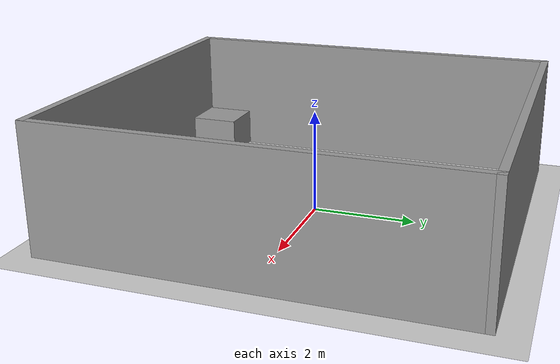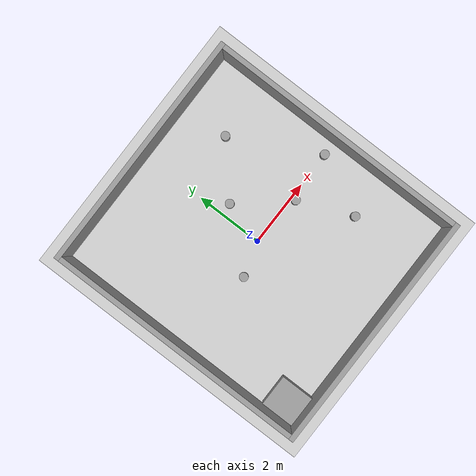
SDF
<sdf version="1.7">
 <world name="default">
  <light name="sun" type="directional">
   <pose>0 0 10 0 -0 0</pose>
   <diffuse>0.8 0.8 0.8 1</diffuse>
   <specular>0.2 0.2 0.2 1</specular>
   <attenuation>
    <range>1000</range>
    <constant>0.9</constant>
    <linear>0.01</linear>
    <quadratic>0.001</quadratic>
   </attenuation>
   <direction>-0.5 0.1 -0.9</direction>
   <spot><inner_angle>0</inner_angle><outer_angle>0</outer_angle><falloff>0</falloff></spot>
  </light>
  <model name="ground_plane">
   <static>1</static>
   <link name="link">
    <collision name="collision">
     <geometry><plane><normal>0 0 1</normal><size>100 100</size></plane></geometry>
     <surface>
      <contact><collide_bitmask>65535</collide_bitmask></contact>
      <friction><ode><mu>100</mu><mu2>50</mu2></ode></friction>
     </surface>
    </collision>
    <visual name="visual">
     <cast_shadows>0</cast_shadows>
     <geometry><plane><normal>0 0 1</normal><size>100 100</size></plane></geometry>
     <material>
      <script><uri>file://media/materials/scripts/gazebo.material</uri><name>Gazebo/Grey</name></script>
     </material>
    </visual>
   </link>
  </model>
  <gravity>0 0 -9.8</gravity>
  <magnetic_field>6e-06 2.3e-05 -4.2e-05</magnetic_field>
  <atmosphere type="adiabatic"/>
  <physics type="ode">
   <max_step_size>0.001</max_step_size>
   <real_time_factor>1</real_time_factor>
   <real_time_update_rate>1000</real_time_update_rate>
  </physics>
  <scene><ambient>0.4 0.4 0.4 1</ambient><background>0.7 0.7 0.7 1</background><shadows>1</shadows></scene>
  <spherical_coordinates>
   <surface_model>EARTH_WGS84</surface_model>
   <latitude_deg>0</latitude_deg>
   <longitude_deg>0</longitude_deg>
   <elevation>0</elevation>
   <heading_deg>0</heading_deg>
  </spherical_coordinates>
  <model name="boiler_walls">
   <pose>-0.017625 0.005277 0 0 -0 0</pose>
   <link name="Wall_0">
    <collision name="Wall_0_Collision">
     <geometry><box><size>7.25 0.15 2.5</size></box></geometry>
     <pose>0 0 1.25 0 -0 0</pose>
    </collision>
    <visual name="Wall_0_Visual">
     <pose>0 0 1.25 0 -0 0</pose>
     <geometry><box><size>7.25 0.15 2.5</size></box></geometry>
     <material>
      <script><uri>file://media/materials/scripts/gazebo.material</uri><name>Gazebo/Grey</name></script>
      <ambient>1 1 1 1</ambient>
     </material>
     <meta><layer>0</layer></meta>
    </visual>
    <pose>-0 -3.925 0 0 -0 3.14159</pose>
   </link>
   <link name="Wall_16">
    <collision name="Wall_16_Collision">
     <geometry><box><size>7.25 0.15 2.5</size></box></geometry>
     <pose>0 0 1.25 0 -0 0</pose>
    </collision>
    <visual name="Wall_16_Visual">
     <pose>0 0 1.25 0 -0 0</pose>
     <geometry><box><size>7.25 0.15 2.5</size></box></geometry>
     <material>
      <script><uri>file://media/materials/scripts/gazebo.material</uri><name>Gazebo/Grey</name></script>
      <ambient>1 1 1 1</ambient>
     </material>
     <meta><layer>0</layer></meta>
    </visual>
    <pose>-0 3.925 0 0 -0 0</pose>
   </link>
   <link name="Wall_6">
    <collision name="Wall_6_Collision">
     <geometry><box><size>8 0.15 2.5</size></box></geometry>
     <pose>0 0 1.25 0 -0 0</pose>
    </collision>
    <visual name="Wall_6_Visual">
     <pose>0 0 1.25 0 -0 0</pose>
     <geometry><box><size>8 0.15 2.5</size></box></geometry>
     <material>
      <script><uri>file://media/materials/scripts/gazebo.material</uri><name>Gazebo/Grey</name></script>
      <ambient>1 1 1 1</ambient>
     </material>
     <meta><layer>0</layer></meta>
    </visual>
    <pose>-3.55 -0 0 0 -0 1.5708</pose>
   </link>
   <link name="Wall_8">
    <collision name="Wall_8_Collision">
     <geometry><box><size>8 0.15 2.5</size></box></geometry>
     <pose>0 0 1.25 0 -0 0</pose>
    </collision>
    <visual name="Wall_8_Visual">
     <pose>0 0 1.25 0 -0 0</pose>
     <geometry><box><size>8 0.15 2.5</size></box></geometry>
     <material>
      <script><uri>file://media/materials/scripts/gazebo.material</uri><name>Gazebo/Grey</name></script>
      <ambient>1 1 1 1</ambient>
     </material>
     <meta><layer>0</layer></meta>
    </visual>
    <pose>3.55 -0 0 0 -0 1.5708</pose>
   </link>
   <static>1</static>
  </model>
  <model name="unit_box">
   <pose>-2.98179 -3.3367 0.41453 0 -0 0.000213</pose>
   <link name="link">
    <inertial>
     <mass>1</mass>
     <inertia>
      <ixx>0.166667</ixx>
      <ixy>0</ixy>
      <ixz>0</ixz>
      <iyy>0.166667</iyy>
      <iyz>0</iyz>
      <izz>0.166667</izz>
     </inertia>
    </inertial>
    <collision name="collision"><geometry><box><size>0.940274 1 0.769061</size></box></geometry></collision>
    <visual name="visual">
     <geometry><box><size>0.940274 1 0.769061</size></box></geometry>
     <material>
      <script><name>Gazebo/Grey</name><uri>file://media/materials/scripts/gazebo.material</uri></script>
     </material>
    </visual>
   </link>
  </model>
  <model name="unit_cylinder">
   <pose>1.76466 2.49189 0.297867 1e-06 -2.3e-05 -0.051589</pose>
   <link name="link">
    <inertial>
     <mass>1</mass>
     <inertia><ixx>0.145833</ixx><ixy>0</ixy><ixz>0</ixz><iyy>0.145833</iyy><iyz>0</iyz><izz>0.125</izz></inertia>
    </inertial>
    <collision name="collision">
     <geometry><cylinder><radius>0.130589</radius><length>0.535737</length></cylinder></geometry>
    </collision>
    <visual name="visual">
     <geometry><cylinder><radius>0.130589</radius><length>0.535737</length></cylinder></geometry>
     <material>
      <script><name>Gazebo/Grey</name><uri>file://media/materials/scripts/gazebo.material</uri></script>
     </material>
    </visual>
   </link>
  </model>
  <model name="unit_cylinder_clone">
   <pose>0.352768 1.25182 0.297868 1e-06 2e-05 -0.051529</pose>
   <link name="link">
    <inertial>
     <mass>1</mass>
     <inertia><ixx>0.145833</ixx><ixy>0</ixy><ixz>0</ixz><iyy>0.145833</iyy><iyz>0</iyz><izz>0.125</izz></inertia>
    </inertial>
    <collision name="collision">
     <geometry><cylinder><radius>0.130589</radius><length>0.535738</length></cylinder></geometry>
    </collision>
    <visual name="visual">
     <geometry><cylinder><radius>0.130589</radius><length>0.535738</length></cylinder></geometry>
     <material>
      <script><name>Gazebo/Grey</name><uri>file://media/materials/scripts/gazebo.material</uri></script>
     </material>
    </visual>
   </link>
  </model>
  <model name="unit_cylinder_clone_0">
   <pose>2.20308 -1.72296 0.297869 0 3.5e-05 -0.051042</pose>
   <link name="link">
    <inertial>
     <mass>1</mass>
     <inertia><ixx>0.145833</ixx><ixy>0</ixy><ixz>0</ixz><iyy>0.145833</iyy><iyz>0</iyz><izz>0.125</izz></inertia>
    </inertial>
    <collision name="collision">
     <geometry><cylinder><radius>0.130589</radius><length>0.535738</length></cylinder></geometry>
    </collision>
    <visual name="visual">
     <geometry><cylinder><radius>0.130589</radius><length>0.535738</length></cylinder></geometry>
     <material>
      <script><name>Gazebo/Grey</name><uri>file://media/materials/scripts/gazebo.material</uri></script>
     </material>
    </visual>
   </link>
  </model>
  <model name="unit_cylinder_clone_1">
   <pose>1.54998 -0.141958 0.297867 0 -2e-06 -0.051603</pose>
   <link name="link">
    <inertial>
     <mass>1</mass>
     <inertia><ixx>0.145833</ixx><ixy>0</ixy><ixz>0</ixz><iyy>0.145833</iyy><iyz>0</iyz><izz>0.125</izz></inertia>
    </inertial>
    <collision name="collision">
     <geometry><cylinder><radius>0.130589</radius><length>0.535738</length></cylinder></geometry>
    </collision>
    <visual name="visual">
     <geometry><cylinder><radius>0.130589</radius><length>0.535738</length></cylinder></geometry>
     <material>
      <script><name>Gazebo/Grey</name><uri>file://media/materials/scripts/gazebo.material</uri></script>
     </material>
    </visual>
   </link>
  </model>
  <model name="unit_cylinder_clone_2">
   <pose>-1.01598 -0.299566 0.297863 2e-06 -0 -0.0516</pose>
   <link name="link">
    <inertial>
     <mass>1</mass>
     <inertia><ixx>0.145833</ixx><ixy>0</ixy><ixz>0</ixz><iyy>0.145833</iyy><iyz>0</iyz><izz>0.125</izz></inertia>
    </inertial>
    <collision name="collision">
     <geometry><cylinder><radius>0.130589</radius><length>0.535738</length></cylinder></geometry>
    </collision>
    <visual name="visual">
     <geometry><cylinder><radius>0.130589</radius><length>0.535738</length></cylinder></geometry>
     <material>
      <script><name>Gazebo/Grey</name><uri>file://media/materials/scripts/gazebo.material</uri></script>
     </material>
    </visual>
   </link>
  </model>
  <model name="unit_cylinder_clone_3">
   <pose>3.04353 0.000547 0.297866 1e-06 -2.4e-05 -0.051565</pose>
   <link name="link">
    <inertial>
     <mass>1</mass>
     <inertia><ixx>0.145833</ixx><ixy>0</ixy><ixz>0</ixz><iyy>0.145833</iyy><iyz>0</iyz><izz>0.125</izz></inertia>
    </inertial>
    <collision name="collision">
     <geometry><cylinder><radius>0.130589</radius><length>0.535738</length></cylinder></geometry>
    </collision>
    <visual name="visual">
     <geometry><cylinder><radius>0.130589</radius><length>0.535738</length></cylinder></geometry>
     <material>
      <script><name>Gazebo/Grey</name><uri>file://media/materials/scripts/gazebo.material</uri></script>
     </material>
    </visual>
   </link>
  </model>
 </world>
</sdf>
